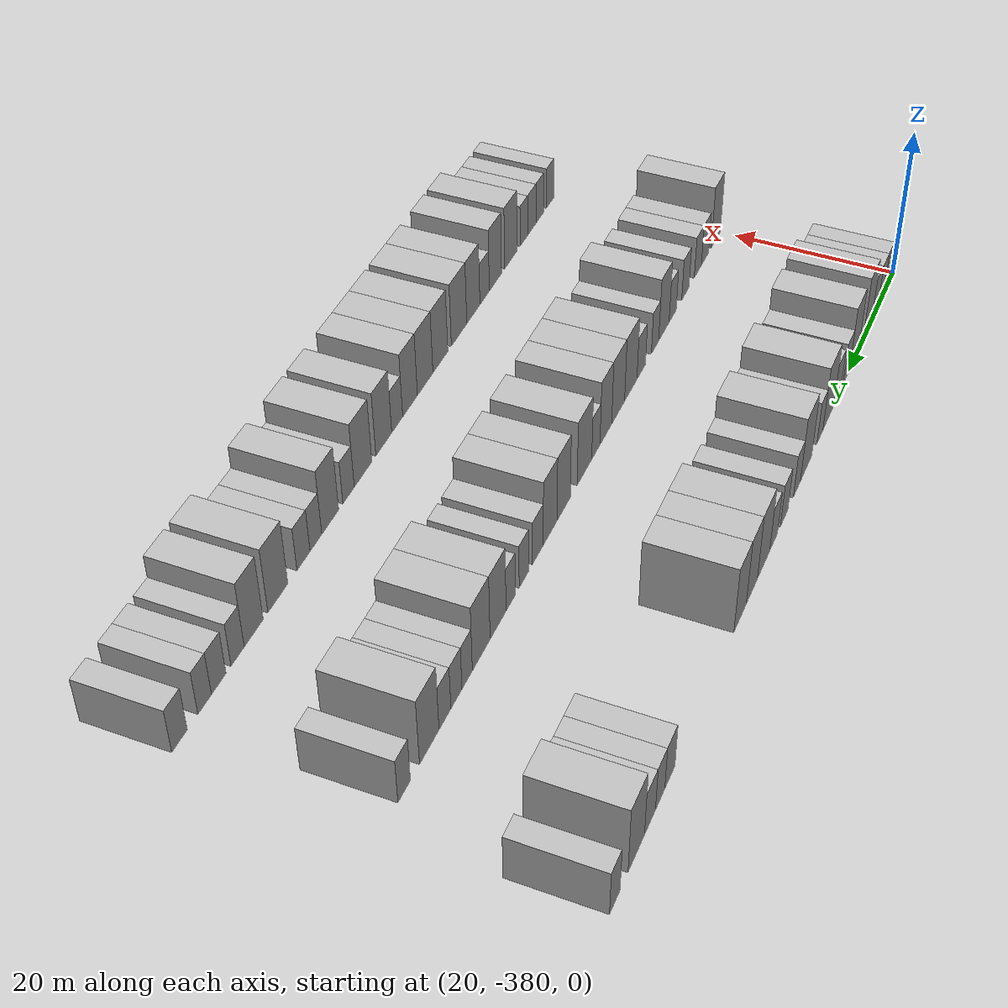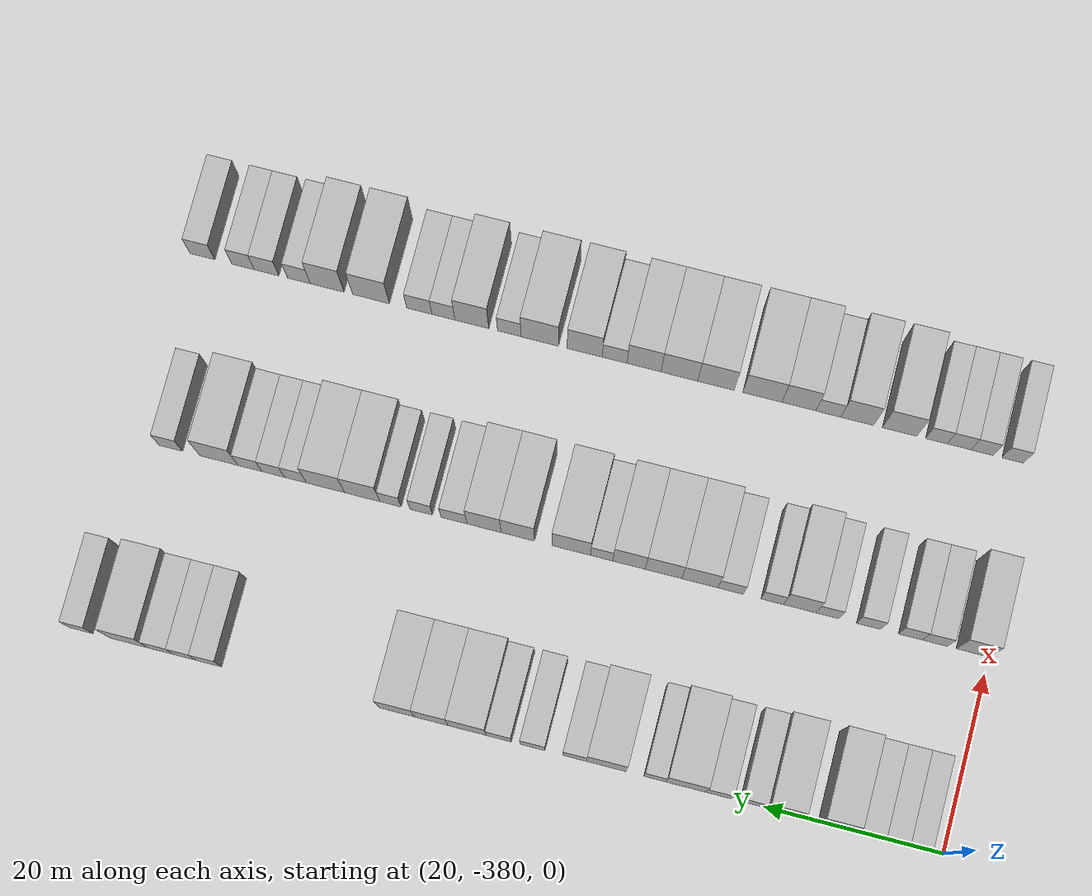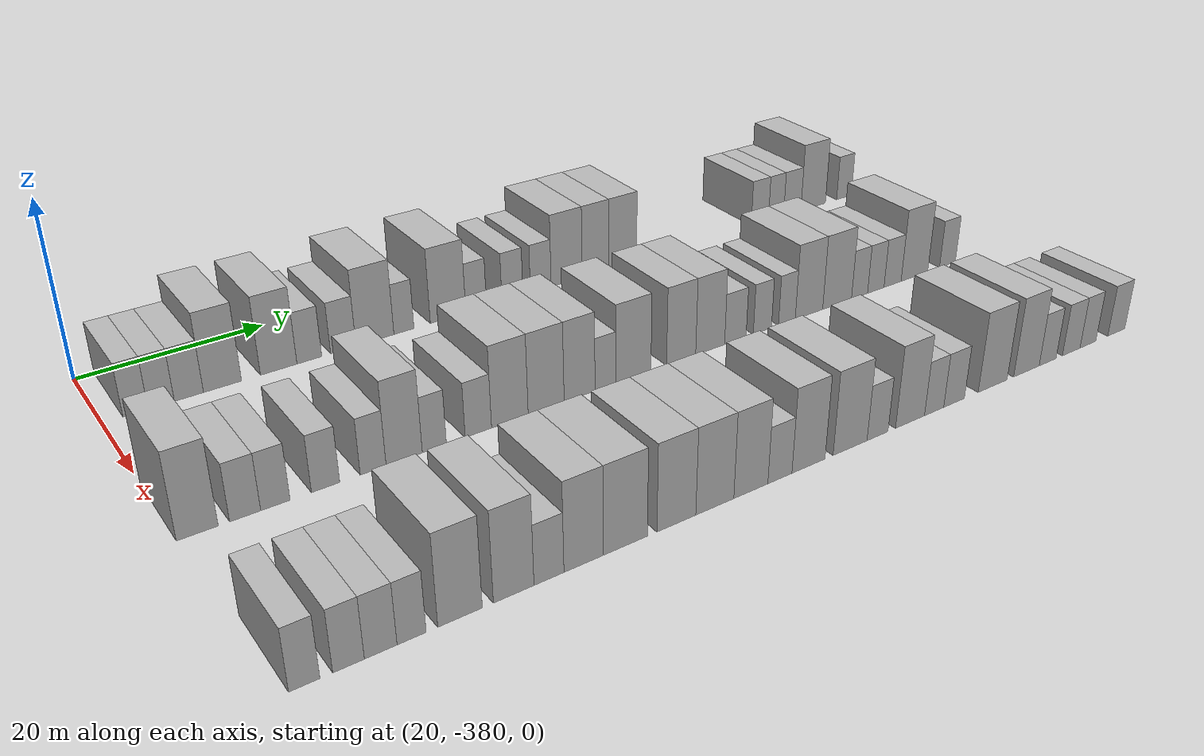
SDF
<sdf version="1.6">
 <world name="default">
  <model name="building_1">
   <static>1</static>
   <pose>25.0000 -376.7795 0 0.000000 0.000000 0.000000</pose>
   <link name="link">
    <pose>0 0 3.00 0 0 0</pose>
    <collision name="collision"><geometry><box><size>10.0000 2.4410 6.0000</size></box></geometry></collision>
    <visual name="visual">
     <cast_shadows>0</cast_shadows>
     <geometry><box><size>10.0000 2.4410 6.0000</size></box></geometry>
     <material>
      <script>
       <uri>model://HANNAS_wall/materials/scripts</uri>
       <uri>model://HANNAS_wall/materials/textures</uri>
       <name>vrc/HANNAS_wall</name>
      </script>
     </material>
    </visual>
   </link>
  </model>
  <model name="building_2">
   <static>1</static>
   <pose>25.0000 -374.2593 0 0.000000 0.000000 0.000000</pose>
   <link name="link">
    <pose>0 0 3.00 0 0 0</pose>
    <collision name="collision"><geometry><box><size>10.0000 2.5993 6.0000</size></box></geometry></collision>
    <visual name="visual">
     <cast_shadows>0</cast_shadows>
     <geometry><box><size>10.0000 2.5993 6.0000</size></box></geometry>
     <material>
      <script>
       <uri>model://HANNAS_wall/materials/scripts</uri>
       <uri>model://HANNAS_wall/materials/textures</uri>
       <name>vrc/HANNAS_wall</name>
      </script>
     </material>
    </visual>
   </link>
  </model>
  <model name="building_3">
   <static>1</static>
   <pose>25.0000 -371.4876 0 0.000000 0.000000 0.000000</pose>
   <link name="link">
    <pose>0 0 3.00 0 0 0</pose>
    <collision name="collision"><geometry><box><size>10.0000 2.9440 6.0000</size></box></geometry></collision>
    <visual name="visual">
     <cast_shadows>0</cast_shadows>
     <geometry><box><size>10.0000 2.9440 6.0000</size></box></geometry>
     <material>
      <script>
       <uri>model://HANNAS_wall/materials/scripts</uri>
       <uri>model://HANNAS_wall/materials/textures</uri>
       <name>vrc/HANNAS_wall</name>
      </script>
     </material>
    </visual>
   </link>
  </model>
  <model name="building_4">
   <static>1</static>
   <pose>25.0000 -368.0420 0 0.000000 0.000000 0.000000</pose>
   <link name="link">
    <pose>0 0 4.50 0 0 0</pose>
    <collision name="collision"><geometry><box><size>10.0000 3.9472 9.0000</size></box></geometry></collision>
    <visual name="visual">
     <cast_shadows>0</cast_shadows>
     <geometry><box><size>10.0000 3.9472 9.0000</size></box></geometry>
     <material>
      <script>
       <uri>model://HANNAS_wall/materials/scripts</uri>
       <uri>model://HANNAS_wall/materials/textures</uri>
       <name>vrc/HANNAS_wall</name>
      </script>
     </material>
    </visual>
   </link>
  </model>
  <model name="building_5">
   <static>1</static>
   <pose>25.0000 -362.0885 0 0.000000 0.000000 0.000000</pose>
   <link name="link">
    <pose>0 0 4.50 0 0 0</pose>
    <collision name="collision"><geometry><box><size>10.0000 3.9597 9.0000</size></box></geometry></collision>
    <visual name="visual">
     <cast_shadows>0</cast_shadows>
     <geometry><box><size>10.0000 3.9597 9.0000</size></box></geometry>
     <material>
      <script>
       <uri>model://HANNAS_wall/materials/scripts</uri>
       <uri>model://HANNAS_wall/materials/textures</uri>
       <name>vrc/HANNAS_wall</name>
      </script>
     </material>
    </visual>
   </link>
  </model>
  <model name="building_6">
   <static>1</static>
   <pose>25.0000 -358.7314 0 0.000000 0.000000 0.000000</pose>
   <link name="link">
    <pose>0 0 3.00 0 0 0</pose>
    <collision name="collision"><geometry><box><size>10.0000 2.7545 6.0000</size></box></geometry></collision>
    <visual name="visual">
     <cast_shadows>0</cast_shadows>
     <geometry><box><size>10.0000 2.7545 6.0000</size></box></geometry>
     <material>
      <script>
       <uri>model://HANNAS_wall/materials/scripts</uri>
       <uri>model://HANNAS_wall/materials/textures</uri>
       <name>vrc/HANNAS_wall</name>
      </script>
     </material>
    </visual>
   </link>
  </model>
  <model name="building_7">
   <static>1</static>
   <pose>25.0000 -354.9093 0 0.000000 0.000000 0.000000</pose>
   <link name="link">
    <pose>0 0 3.00 0 0 0</pose>
    <collision name="collision"><geometry><box><size>10.0000 2.8897 6.0000</size></box></geometry></collision>
    <visual name="visual">
     <cast_shadows>0</cast_shadows>
     <geometry><box><size>10.0000 2.8897 6.0000</size></box></geometry>
     <material>
      <script>
       <uri>model://HANNAS_wall/materials/scripts</uri>
       <uri>model://HANNAS_wall/materials/textures</uri>
       <name>vrc/HANNAS_wall</name>
      </script>
     </material>
    </visual>
   </link>
  </model>
  <model name="building_8">
   <static>1</static>
   <pose>25.0000 -351.2400 0 0.000000 0.000000 0.000000</pose>
   <link name="link">
    <pose>0 0 4.50 0 0 0</pose>
    <collision name="collision"><geometry><box><size>10.0000 4.4490 9.0000</size></box></geometry></collision>
    <visual name="visual">
     <cast_shadows>0</cast_shadows>
     <geometry><box><size>10.0000 4.4490 9.0000</size></box></geometry>
     <material>
      <script>
       <uri>model://HANNAS_wall/materials/scripts</uri>
       <uri>model://HANNAS_wall/materials/textures</uri>
       <name>vrc/HANNAS_wall</name>
      </script>
     </material>
    </visual>
   </link>
  </model>
  <model name="building_9">
   <static>1</static>
   <pose>25.0000 -347.8144 0 0.000000 0.000000 0.000000</pose>
   <link name="link">
    <pose>0 0 3.00 0 0 0</pose>
    <collision name="collision"><geometry><box><size>10.0000 2.4022 6.0000</size></box></geometry></collision>
    <visual name="visual">
     <cast_shadows>0</cast_shadows>
     <geometry><box><size>10.0000 2.4022 6.0000</size></box></geometry>
     <material>
      <script>
       <uri>model://HANNAS_wall/materials/scripts</uri>
       <uri>model://HANNAS_wall/materials/textures</uri>
       <name>vrc/HANNAS_wall</name>
      </script>
     </material>
    </visual>
   </link>
  </model>
  <model name="building_10">
   <static>1</static>
   <pose>25.0000 -342.4051 0 0.000000 0.000000 0.000000</pose>
   <link name="link">
    <pose>0 0 4.50 0 0 0</pose>
    <collision name="collision"><geometry><box><size>10.0000 4.4166 9.0000</size></box></geometry></collision>
    <visual name="visual">
     <cast_shadows>0</cast_shadows>
     <geometry><box><size>10.0000 4.4166 9.0000</size></box></geometry>
     <material>
      <script>
       <uri>model://HANNAS_wall/materials/scripts</uri>
       <uri>model://HANNAS_wall/materials/textures</uri>
       <name>vrc/HANNAS_wall</name>
      </script>
     </material>
    </visual>
   </link>
  </model>
  <model name="building_11">
   <static>1</static>
   <pose>25.0000 -338.8746 0 0.000000 0.000000 0.000000</pose>
   <link name="link">
    <pose>0 0 3.00 0 0 0</pose>
    <collision name="collision"><geometry><box><size>10.0000 2.6444 6.0000</size></box></geometry></collision>
    <visual name="visual">
     <cast_shadows>0</cast_shadows>
     <geometry><box><size>10.0000 2.6444 6.0000</size></box></geometry>
     <material>
      <script>
       <uri>model://HANNAS_wall/materials/scripts</uri>
       <uri>model://HANNAS_wall/materials/textures</uri>
       <name>vrc/HANNAS_wall</name>
      </script>
     </material>
    </visual>
   </link>
  </model>
  <model name="building_12">
   <static>1</static>
   <pose>25.0000 -334.1689 0 0.000000 0.000000 0.000000</pose>
   <link name="link">
    <pose>0 0 3.00 0 0 0</pose>
    <collision name="collision"><geometry><box><size>10.0000 2.7669 6.0000</size></box></geometry></collision>
    <visual name="visual">
     <cast_shadows>0</cast_shadows>
     <geometry><box><size>10.0000 2.7669 6.0000</size></box></geometry>
     <material>
      <script>
       <uri>model://HANNAS_wall/materials/scripts</uri>
       <uri>model://HANNAS_wall/materials/textures</uri>
       <name>vrc/HANNAS_wall</name>
      </script>
     </material>
    </visual>
   </link>
  </model>
  <model name="building_13">
   <static>1</static>
   <pose>25.0000 -330.3850 0 0.000000 0.000000 0.000000</pose>
   <link name="link">
    <pose>0 0 3.00 0 0 0</pose>
    <collision name="collision"><geometry><box><size>10.0000 2.8009 6.0000</size></box></geometry></collision>
    <visual name="visual">
     <cast_shadows>0</cast_shadows>
     <geometry><box><size>10.0000 2.8009 6.0000</size></box></geometry>
     <material>
      <script>
       <uri>model://HANNAS_wall/materials/scripts</uri>
       <uri>model://HANNAS_wall/materials/textures</uri>
       <name>vrc/HANNAS_wall</name>
      </script>
     </material>
    </visual>
   </link>
  </model>
  <model name="building_14">
   <static>1</static>
   <pose>25.0000 -326.8384 0 0.000000 0.000000 0.000000</pose>
   <link name="link">
    <pose>0 0 4.50 0 0 0</pose>
    <collision name="collision"><geometry><box><size>10.0000 4.2923 9.0000</size></box></geometry></collision>
    <visual name="visual">
     <cast_shadows>0</cast_shadows>
     <geometry><box><size>10.0000 4.2923 9.0000</size></box></geometry>
     <material>
      <script>
       <uri>model://HANNAS_wall/materials/scripts</uri>
       <uri>model://HANNAS_wall/materials/textures</uri>
       <name>vrc/HANNAS_wall</name>
      </script>
     </material>
    </visual>
   </link>
  </model>
  <model name="building_15">
   <static>1</static>
   <pose>25.0000 -322.8135 0 0.000000 0.000000 0.000000</pose>
   <link name="link">
    <pose>0 0 4.50 0 0 0</pose>
    <collision name="collision"><geometry><box><size>10.0000 3.7576 9.0000</size></box></geometry></collision>
    <visual name="visual">
     <cast_shadows>0</cast_shadows>
     <geometry><box><size>10.0000 3.7576 9.0000</size></box></geometry>
     <material>
      <script>
       <uri>model://HANNAS_wall/materials/scripts</uri>
       <uri>model://HANNAS_wall/materials/textures</uri>
       <name>vrc/HANNAS_wall</name>
      </script>
     </material>
    </visual>
   </link>
  </model>
  <model name="building_16">
   <static>1</static>
   <pose>25.0000 -318.9065 0 0.000000 0.000000 0.000000</pose>
   <link name="link">
    <pose>0 0 4.50 0 0 0</pose>
    <collision name="collision"><geometry><box><size>10.0000 4.0564 9.0000</size></box></geometry></collision>
    <visual name="visual">
     <cast_shadows>0</cast_shadows>
     <geometry><box><size>10.0000 4.0564 9.0000</size></box></geometry>
     <material>
      <script>
       <uri>model://HANNAS_wall/materials/scripts</uri>
       <uri>model://HANNAS_wall/materials/textures</uri>
       <name>vrc/HANNAS_wall</name>
      </script>
     </material>
    </visual>
   </link>
  </model>
  <model name="building_17">
   <static>1</static>
   <pose>25.0000 -297.6133 0 0.000000 0.000000 0.000000</pose>
   <link name="link">
    <pose>0 0 3.00 0 0 0</pose>
    <collision name="collision"><geometry><box><size>10.0000 2.8433 6.0000</size></box></geometry></collision>
    <visual name="visual">
     <cast_shadows>0</cast_shadows>
     <geometry><box><size>10.0000 2.8433 6.0000</size></box></geometry>
     <material>
      <script>
       <uri>model://HANNAS_wall/materials/scripts</uri>
       <uri>model://HANNAS_wall/materials/textures</uri>
       <name>vrc/HANNAS_wall</name>
      </script>
     </material>
    </visual>
   </link>
  </model>
  <model name="building_18">
   <static>1</static>
   <pose>25.0000 -294.9142 0 0.000000 0.000000 0.000000</pose>
   <link name="link">
    <pose>0 0 3.00 0 0 0</pose>
    <collision name="collision"><geometry><box><size>10.0000 2.5547 6.0000</size></box></geometry></collision>
    <visual name="visual">
     <cast_shadows>0</cast_shadows>
     <geometry><box><size>10.0000 2.5547 6.0000</size></box></geometry>
     <material>
      <script>
       <uri>model://HANNAS_wall/materials/scripts</uri>
       <uri>model://HANNAS_wall/materials/textures</uri>
       <name>vrc/HANNAS_wall</name>
      </script>
     </material>
    </visual>
   </link>
  </model>
  <model name="building_19">
   <static>1</static>
   <pose>25.0000 -292.1656 0 0.000000 0.000000 0.000000</pose>
   <link name="link">
    <pose>0 0 3.00 0 0 0</pose>
    <collision name="collision"><geometry><box><size>10.0000 2.9425 6.0000</size></box></geometry></collision>
    <visual name="visual">
     <cast_shadows>0</cast_shadows>
     <geometry><box><size>10.0000 2.9425 6.0000</size></box></geometry>
     <material>
      <script>
       <uri>model://HANNAS_wall/materials/scripts</uri>
       <uri>model://HANNAS_wall/materials/textures</uri>
       <name>vrc/HANNAS_wall</name>
      </script>
     </material>
    </visual>
   </link>
  </model>
  <model name="building_20">
   <static>1</static>
   <pose>25.0000 -288.5497 0 0.000000 0.000000 0.000000</pose>
   <link name="link">
    <pose>0 0 4.50 0 0 0</pose>
    <collision name="collision"><geometry><box><size>10.0000 4.2895 9.0000</size></box></geometry></collision>
    <visual name="visual">
     <cast_shadows>0</cast_shadows>
     <geometry><box><size>10.0000 4.2895 9.0000</size></box></geometry>
     <material>
      <script>
       <uri>model://HANNAS_wall/materials/scripts</uri>
       <uri>model://HANNAS_wall/materials/textures</uri>
       <name>vrc/HANNAS_wall</name>
      </script>
     </material>
    </visual>
   </link>
  </model>
  <model name="building_21">
   <static>1</static>
   <pose>25.0000 -283.0830 0 0.000000 0.000000 0.000000</pose>
   <link name="link">
    <pose>0 0 3.00 0 0 0</pose>
    <collision name="collision"><geometry><box><size>10.0000 2.6439 6.0000</size></box></geometry></collision>
    <visual name="visual">
     <cast_shadows>0</cast_shadows>
     <geometry><box><size>10.0000 2.6439 6.0000</size></box></geometry>
     <material>
      <script>
       <uri>model://HANNAS_wall/materials/scripts</uri>
       <uri>model://HANNAS_wall/materials/textures</uri>
       <name>vrc/HANNAS_wall</name>
      </script>
     </material>
    </visual>
   </link>
  </model>
  <model name="building_184">
   <static>1</static>
   <pose>47.0000 -378.1825 0 0.000000 0.000000 0.000000</pose>
   <link name="link">
    <pose>0 0 4.50 0 0 0</pose>
    <collision name="collision"><geometry><box><size>10.0000 3.6351 9.0000</size></box></geometry></collision>
    <visual name="visual">
     <cast_shadows>0</cast_shadows>
     <geometry><box><size>10.0000 3.6351 9.0000</size></box></geometry>
     <material>
      <script>
       <uri>model://HANNAS_wall/materials/scripts</uri>
       <uri>model://HANNAS_wall/materials/textures</uri>
       <name>vrc/HANNAS_wall</name>
      </script>
     </material>
    </visual>
   </link>
  </model>
  <model name="building_185">
   <static>1</static>
   <pose>47.0000 -373.9674 0 0.000000 0.000000 0.000000</pose>
   <link name="link">
    <pose>0 0 3.00 0 0 0</pose>
    <collision name="collision"><geometry><box><size>10.0000 2.7951 6.0000</size></box></geometry></collision>
    <visual name="visual">
     <cast_shadows>0</cast_shadows>
     <geometry><box><size>10.0000 2.7951 6.0000</size></box></geometry>
     <material>
      <script>
       <uri>model://HANNAS_wall/materials/scripts</uri>
       <uri>model://HANNAS_wall/materials/textures</uri>
       <name>vrc/HANNAS_wall</name>
      </script>
     </material>
    </visual>
   </link>
  </model>
  <model name="building_186">
   <static>1</static>
   <pose>47.0000 -371.2185 0 0.000000 0.000000 0.000000</pose>
   <link name="link">
    <pose>0 0 3.00 0 0 0</pose>
    <collision name="collision"><geometry><box><size>10.0000 2.7026 6.0000</size></box></geometry></collision>
    <visual name="visual">
     <cast_shadows>0</cast_shadows>
     <geometry><box><size>10.0000 2.7026 6.0000</size></box></geometry>
     <material>
      <script>
       <uri>model://HANNAS_wall/materials/scripts</uri>
       <uri>model://HANNAS_wall/materials/textures</uri>
       <name>vrc/HANNAS_wall</name>
      </script>
     </material>
    </visual>
   </link>
  </model>
  <model name="building_187">
   <static>1</static>
   <pose>47.0000 -366.5113 0 0.000000 0.000000 0.000000</pose>
   <link name="link">
    <pose>0 0 3.00 0 0 0</pose>
    <collision name="collision"><geometry><box><size>10.0000 2.7118 6.0000</size></box></geometry></collision>
    <visual name="visual">
     <cast_shadows>0</cast_shadows>
     <geometry><box><size>10.0000 2.7118 6.0000</size></box></geometry>
     <material>
      <script>
       <uri>model://HANNAS_wall/materials/scripts</uri>
       <uri>model://HANNAS_wall/materials/textures</uri>
       <name>vrc/HANNAS_wall</name>
      </script>
     </material>
    </visual>
   </link>
  </model>
  <model name="building_188">
   <static>1</static>
   <pose>47.0000 -361.8683 0 0.000000 0.000000 0.000000</pose>
   <link name="link">
    <pose>0 0 3.00 0 0 0</pose>
    <collision name="collision"><geometry><box><size>10.0000 2.5742 6.0000</size></box></geometry></collision>
    <visual name="visual">
     <cast_shadows>0</cast_shadows>
     <geometry><box><size>10.0000 2.5742 6.0000</size></box></geometry>
     <material>
      <script>
       <uri>model://HANNAS_wall/materials/scripts</uri>
       <uri>model://HANNAS_wall/materials/textures</uri>
       <name>vrc/HANNAS_wall</name>
      </script>
     </material>
    </visual>
   </link>
  </model>
  <model name="building_189">
   <static>1</static>
   <pose>47.0000 -358.7316 0 0.000000 0.000000 0.000000</pose>
   <link name="link">
    <pose>0 0 4.50 0 0 0</pose>
    <collision name="collision"><geometry><box><size>10.0000 3.6991 9.0000</size></box></geometry></collision>
    <visual name="visual">
     <cast_shadows>0</cast_shadows>
     <geometry><box><size>10.0000 3.6991 9.0000</size></box></geometry>
     <material>
      <script>
       <uri>model://HANNAS_wall/materials/scripts</uri>
       <uri>model://HANNAS_wall/materials/textures</uri>
       <name>vrc/HANNAS_wall</name>
      </script>
     </material>
    </visual>
   </link>
  </model>
  <model name="building_190">
   <static>1</static>
   <pose>47.0000 -355.6220 0 0.000000 0.000000 0.000000</pose>
   <link name="link">
    <pose>0 0 3.00 0 0 0</pose>
    <collision name="collision"><geometry><box><size>10.0000 2.5201 6.0000</size></box></geometry></collision>
    <visual name="visual">
     <cast_shadows>0</cast_shadows>
     <geometry><box><size>10.0000 2.5201 6.0000</size></box></geometry>
     <material>
      <script>
       <uri>model://HANNAS_wall/materials/scripts</uri>
       <uri>model://HANNAS_wall/materials/textures</uri>
       <name>vrc/HANNAS_wall</name>
      </script>
     </material>
    </visual>
   </link>
  </model>
  <model name="building_191">
   <static>1</static>
   <pose>47.0000 -350.9259 0 0.000000 0.000000 0.000000</pose>
   <link name="link">
    <pose>0 0 3.00 0 0 0</pose>
    <collision name="collision"><geometry><box><size>10.0000 2.8722 6.0000</size></box></geometry></collision>
    <visual name="visual">
     <cast_shadows>0</cast_shadows>
     <geometry><box><size>10.0000 2.8722 6.0000</size></box></geometry>
     <material>
      <script>
       <uri>model://HANNAS_wall/materials/scripts</uri>
       <uri>model://HANNAS_wall/materials/textures</uri>
       <name>vrc/HANNAS_wall</name>
      </script>
     </material>
    </visual>
   </link>
  </model>
  <model name="building_192">
   <static>1</static>
   <pose>47.0000 -347.4424 0 0.000000 0.000000 0.000000</pose>
   <link name="link">
    <pose>0 0 4.50 0 0 0</pose>
    <collision name="collision"><geometry><box><size>10.0000 4.0946 9.0000</size></box></geometry></collision>
    <visual name="visual">
     <cast_shadows>0</cast_shadows>
     <geometry><box><size>10.0000 4.0946 9.0000</size></box></geometry>
     <material>
      <script>
       <uri>model://HANNAS_wall/materials/scripts</uri>
       <uri>model://HANNAS_wall/materials/textures</uri>
       <name>vrc/HANNAS_wall</name>
      </script>
     </material>
    </visual>
   </link>
  </model>
  <model name="building_193">
   <static>1</static>
   <pose>47.0000 -343.3202 0 0.000000 0.000000 0.000000</pose>
   <link name="link">
    <pose>0 0 4.50 0 0 0</pose>
    <collision name="collision"><geometry><box><size>10.0000 4.1497 9.0000</size></box></geometry></collision>
    <visual name="visual">
     <cast_shadows>0</cast_shadows>
     <geometry><box><size>10.0000 4.1497 9.0000</size></box></geometry>
     <material>
      <script>
       <uri>model://HANNAS_wall/materials/scripts</uri>
       <uri>model://HANNAS_wall/materials/textures</uri>
       <name>vrc/HANNAS_wall</name>
      </script>
     </material>
    </visual>
   </link>
  </model>
  <model name="building_194">
   <static>1</static>
   <pose>47.0000 -339.4068 0 0.000000 0.000000 0.000000</pose>
   <link name="link">
    <pose>0 0 4.50 0 0 0</pose>
    <collision name="collision"><geometry><box><size>10.0000 3.6771 9.0000</size></box></geometry></collision>
    <visual name="visual">
     <cast_shadows>0</cast_shadows>
     <geometry><box><size>10.0000 3.6771 9.0000</size></box></geometry>
     <material>
      <script>
       <uri>model://HANNAS_wall/materials/scripts</uri>
       <uri>model://HANNAS_wall/materials/textures</uri>
       <name>vrc/HANNAS_wall</name>
      </script>
     </material>
    </visual>
   </link>
  </model>
  <model name="building_195">
   <static>1</static>
   <pose>47.0000 -336.3065 0 0.000000 0.000000 0.000000</pose>
   <link name="link">
    <pose>0 0 3.00 0 0 0</pose>
    <collision name="collision"><geometry><box><size>10.0000 2.5234 6.0000</size></box></geometry></collision>
    <visual name="visual">
     <cast_shadows>0</cast_shadows>
     <geometry><box><size>10.0000 2.5234 6.0000</size></box></geometry>
     <material>
      <script>
       <uri>model://HANNAS_wall/materials/scripts</uri>
       <uri>model://HANNAS_wall/materials/textures</uri>
       <name>vrc/HANNAS_wall</name>
      </script>
     </material>
    </visual>
   </link>
  </model>
  <model name="building_196">
   <static>1</static>
   <pose>47.0000 -332.8541 0 0.000000 0.000000 0.000000</pose>
   <link name="link">
    <pose>0 0 4.50 0 0 0</pose>
    <collision name="collision"><geometry><box><size>10.0000 4.3814 9.0000</size></box></geometry></collision>
    <visual name="visual">
     <cast_shadows>0</cast_shadows>
     <geometry><box><size>10.0000 4.3814 9.0000</size></box></geometry>
     <material>
      <script>
       <uri>model://HANNAS_wall/materials/scripts</uri>
       <uri>model://HANNAS_wall/materials/textures</uri>
       <name>vrc/HANNAS_wall</name>
      </script>
     </material>
    </visual>
   </link>
  </model>
  <model name="building_197">
   <static>1</static>
   <pose>47.0000 -326.7607 0 0.000000 0.000000 0.000000</pose>
   <link name="link">
    <pose>0 0 4.50 0 0 0</pose>
    <collision name="collision"><geometry><box><size>10.0000 3.8055 9.0000</size></box></geometry></collision>
    <visual name="visual">
     <cast_shadows>0</cast_shadows>
     <geometry><box><size>10.0000 3.8055 9.0000</size></box></geometry>
     <material>
      <script>
       <uri>model://HANNAS_wall/materials/scripts</uri>
       <uri>model://HANNAS_wall/materials/textures</uri>
       <name>vrc/HANNAS_wall</name>
      </script>
     </material>
    </visual>
   </link>
  </model>
  <model name="building_198">
   <static>1</static>
   <pose>47.0000 -322.9140 0 0.000000 0.000000 0.000000</pose>
   <link name="link">
    <pose>0 0 4.50 0 0 0</pose>
    <collision name="collision"><geometry><box><size>10.0000 3.8879 9.0000</size></box></geometry></collision>
    <visual name="visual">
     <cast_shadows>0</cast_shadows>
     <geometry><box><size>10.0000 3.8879 9.0000</size></box></geometry>
     <material>
      <script>
       <uri>model://HANNAS_wall/materials/scripts</uri>
       <uri>model://HANNAS_wall/materials/textures</uri>
       <name>vrc/HANNAS_wall</name>
      </script>
     </material>
    </visual>
   </link>
  </model>
  <model name="building_199">
   <static>1</static>
   <pose>47.0000 -319.4909 0 0.000000 0.000000 0.000000</pose>
   <link name="link">
    <pose>0 0 3.00 0 0 0</pose>
    <collision name="collision"><geometry><box><size>10.0000 2.9583 6.0000</size></box></geometry></collision>
    <visual name="visual">
     <cast_shadows>0</cast_shadows>
     <geometry><box><size>10.0000 2.9583 6.0000</size></box></geometry>
     <material>
      <script>
       <uri>model://HANNAS_wall/materials/scripts</uri>
       <uri>model://HANNAS_wall/materials/textures</uri>
       <name>vrc/HANNAS_wall</name>
      </script>
     </material>
    </visual>
   </link>
  </model>
  <model name="building_200">
   <static>1</static>
   <pose>47.0000 -315.7278 0 0.000000 0.000000 0.000000</pose>
   <link name="link">
    <pose>0 0 3.00 0 0 0</pose>
    <collision name="collision"><geometry><box><size>10.0000 2.5679 6.0000</size></box></geometry></collision>
    <visual name="visual">
     <cast_shadows>0</cast_shadows>
     <geometry><box><size>10.0000 2.5679 6.0000</size></box></geometry>
     <material>
      <script>
       <uri>model://HANNAS_wall/materials/scripts</uri>
       <uri>model://HANNAS_wall/materials/textures</uri>
       <name>vrc/HANNAS_wall</name>
      </script>
     </material>
    </visual>
   </link>
  </model>
  <model name="building_201">
   <static>1</static>
   <pose>47.0000 -312.2288 0 0.000000 0.000000 0.000000</pose>
   <link name="link">
    <pose>0 0 3.00 0 0 0</pose>
    <collision name="collision"><geometry><box><size>10.0000 2.4302 6.0000</size></box></geometry></collision>
    <visual name="visual">
     <cast_shadows>0</cast_shadows>
     <geometry><box><size>10.0000 2.4302 6.0000</size></box></geometry>
     <material>
      <script>
       <uri>model://HANNAS_wall/materials/scripts</uri>
       <uri>model://HANNAS_wall/materials/textures</uri>
       <name>vrc/HANNAS_wall</name>
      </script>
     </material>
    </visual>
   </link>
  </model>
  <model name="building_202">
   <static>1</static>
   <pose>47.0000 -308.9847 0 0.000000 0.000000 0.000000</pose>
   <link name="link">
    <pose>0 0 4.50 0 0 0</pose>
    <collision name="collision"><geometry><box><size>10.0000 4.0579 9.0000</size></box></geometry></collision>
    <visual name="visual">
     <cast_shadows>0</cast_shadows>
     <geometry><box><size>10.0000 4.0579 9.0000</size></box></geometry>
     <material>
      <script>
       <uri>model://HANNAS_wall/materials/scripts</uri>
       <uri>model://HANNAS_wall/materials/textures</uri>
       <name>vrc/HANNAS_wall</name>
      </script>
     </material>
    </visual>
   </link>
  </model>
  <model name="building_203">
   <static>1</static>
   <pose>47.0000 -304.7627 0 0.000000 0.000000 0.000000</pose>
   <link name="link">
    <pose>0 0 4.50 0 0 0</pose>
    <collision name="collision"><geometry><box><size>10.0000 4.3862 9.0000</size></box></geometry></collision>
    <visual name="visual">
     <cast_shadows>0</cast_shadows>
     <geometry><box><size>10.0000 4.3862 9.0000</size></box></geometry>
     <material>
      <script>
       <uri>model://HANNAS_wall/materials/scripts</uri>
       <uri>model://HANNAS_wall/materials/textures</uri>
       <name>vrc/HANNAS_wall</name>
      </script>
     </material>
    </visual>
   </link>
  </model>
  <model name="building_204">
   <static>1</static>
   <pose>47.0000 -301.3172 0 0.000000 0.000000 0.000000</pose>
   <link name="link">
    <pose>0 0 3.00 0 0 0</pose>
    <collision name="collision"><geometry><box><size>10.0000 2.5046 6.0000</size></box></geometry></collision>
    <visual name="visual">
     <cast_shadows>0</cast_shadows>
     <geometry><box><size>10.0000 2.5046 6.0000</size></box></geometry>
     <material>
      <script>
       <uri>model://HANNAS_wall/materials/scripts</uri>
       <uri>model://HANNAS_wall/materials/textures</uri>
       <name>vrc/HANNAS_wall</name>
      </script>
     </material>
    </visual>
   </link>
  </model>
  <model name="building_205">
   <static>1</static>
   <pose>47.0000 -298.7607 0 0.000000 0.000000 0.000000</pose>
   <link name="link">
    <pose>0 0 3.00 0 0 0</pose>
    <collision name="collision"><geometry><box><size>10.0000 2.6084 6.0000</size></box></geometry></collision>
    <visual name="visual">
     <cast_shadows>0</cast_shadows>
     <geometry><box><size>10.0000 2.6084 6.0000</size></box></geometry>
     <material>
      <script>
       <uri>model://HANNAS_wall/materials/scripts</uri>
       <uri>model://HANNAS_wall/materials/textures</uri>
       <name>vrc/HANNAS_wall</name>
      </script>
     </material>
    </visual>
   </link>
  </model>
  <model name="building_206">
   <static>1</static>
   <pose>47.0000 -296.0762 0 0.000000 0.000000 0.000000</pose>
   <link name="link">
    <pose>0 0 3.00 0 0 0</pose>
    <collision name="collision"><geometry><box><size>10.0000 2.7606 6.0000</size></box></geometry></collision>
    <visual name="visual">
     <cast_shadows>0</cast_shadows>
     <geometry><box><size>10.0000 2.7606 6.0000</size></box></geometry>
     <material>
      <script>
       <uri>model://HANNAS_wall/materials/scripts</uri>
       <uri>model://HANNAS_wall/materials/textures</uri>
       <name>vrc/HANNAS_wall</name>
      </script>
     </material>
    </visual>
   </link>
  </model>
  <model name="building_207">
   <static>1</static>
   <pose>47.0000 -292.5025 0 0.000000 0.000000 0.000000</pose>
   <link name="link">
    <pose>0 0 4.50 0 0 0</pose>
    <collision name="collision"><geometry><box><size>10.0000 4.3869 9.0000</size></box></geometry></collision>
    <visual name="visual">
     <cast_shadows>0</cast_shadows>
     <geometry><box><size>10.0000 4.3869 9.0000</size></box></geometry>
     <material>
      <script>
       <uri>model://HANNAS_wall/materials/scripts</uri>
       <uri>model://HANNAS_wall/materials/textures</uri>
       <name>vrc/HANNAS_wall</name>
      </script>
     </material>
    </visual>
   </link>
  </model>
  <model name="building_208">
   <static>1</static>
   <pose>47.0000 -286.9596 0 0.000000 0.000000 0.000000</pose>
   <link name="link">
    <pose>0 0 3.00 0 0 0</pose>
    <collision name="collision"><geometry><box><size>10.0000 2.6987 6.0000</size></box></geometry></collision>
    <visual name="visual">
     <cast_shadows>0</cast_shadows>
     <geometry><box><size>10.0000 2.6987 6.0000</size></box></geometry>
     <material>
      <script>
       <uri>model://HANNAS_wall/materials/scripts</uri>
       <uri>model://HANNAS_wall/materials/textures</uri>
       <name>vrc/HANNAS_wall</name>
      </script>
     </material>
    </visual>
   </link>
  </model>
  <model name="building_373">
   <static>1</static>
   <pose>69.0000 -377.7778 0 0.000000 0.000000 0.000000</pose>
   <link name="link">
    <pose>0 0 3.00 0 0 0</pose>
    <collision name="collision"><geometry><box><size>10.0000 2.4444 6.0000</size></box></geometry></collision>
    <visual name="visual">
     <cast_shadows>0</cast_shadows>
     <geometry><box><size>10.0000 2.4444 6.0000</size></box></geometry>
     <material>
      <script>
       <uri>model://HANNAS_wall/materials/scripts</uri>
       <uri>model://HANNAS_wall/materials/textures</uri>
       <name>vrc/HANNAS_wall</name>
      </script>
     </material>
    </visual>
   </link>
  </model>
  <model name="building_374">
   <static>1</static>
   <pose>69.0000 -374.2818 0 0.000000 0.000000 0.000000</pose>
   <link name="link">
    <pose>0 0 3.00 0 0 0</pose>
    <collision name="collision"><geometry><box><size>10.0000 2.5477 6.0000</size></box></geometry></collision>
    <visual name="visual">
     <cast_shadows>0</cast_shadows>
     <geometry><box><size>10.0000 2.5477 6.0000</size></box></geometry>
     <material>
      <script>
       <uri>model://HANNAS_wall/materials/scripts</uri>
       <uri>model://HANNAS_wall/materials/textures</uri>
       <name>vrc/HANNAS_wall</name>
      </script>
     </material>
    </visual>
   </link>
  </model>
  <model name="building_375">
   <static>1</static>
   <pose>69.0000 -371.6582 0 0.000000 0.000000 0.000000</pose>
   <link name="link">
    <pose>0 0 3.00 0 0 0</pose>
    <collision name="collision"><geometry><box><size>10.0000 2.6995 6.0000</size></box></geometry></collision>
    <visual name="visual">
     <cast_shadows>0</cast_shadows>
     <geometry><box><size>10.0000 2.6995 6.0000</size></box></geometry>
     <material>
      <script>
       <uri>model://HANNAS_wall/materials/scripts</uri>
       <uri>model://HANNAS_wall/materials/textures</uri>
       <name>vrc/HANNAS_wall</name>
      </script>
     </material>
    </visual>
   </link>
  </model>
  <model name="building_376">
   <static>1</static>
   <pose>69.0000 -369.0780 0 0.000000 0.000000 0.000000</pose>
   <link name="link">
    <pose>0 0 3.00 0 0 0</pose>
    <collision name="collision"><geometry><box><size>10.0000 2.4609 6.0000</size></box></geometry></collision>
    <visual name="visual">
     <cast_shadows>0</cast_shadows>
     <geometry><box><size>10.0000 2.4609 6.0000</size></box></geometry>
     <material>
      <script>
       <uri>model://HANNAS_wall/materials/scripts</uri>
       <uri>model://HANNAS_wall/materials/textures</uri>
       <name>vrc/HANNAS_wall</name>
      </script>
     </material>
    </visual>
   </link>
  </model>
  <model name="building_377">
   <static>1</static>
   <pose>69.0000 -364.8821 0 0.000000 0.000000 0.000000</pose>
   <link name="link">
    <pose>0 0 4.50 0 0 0</pose>
    <collision name="collision"><geometry><box><size>10.0000 3.9308 9.0000</size></box></geometry></collision>
    <visual name="visual">
     <cast_shadows>0</cast_shadows>
     <geometry><box><size>10.0000 3.9308 9.0000</size></box></geometry>
     <material>
      <script>
       <uri>model://HANNAS_wall/materials/scripts</uri>
       <uri>model://HANNAS_wall/materials/textures</uri>
       <name>vrc/HANNAS_wall</name>
      </script>
     </material>
    </visual>
   </link>
  </model>
  <model name="building_378">
   <static>1</static>
   <pose>69.0000 -360.0393 0 0.000000 0.000000 0.000000</pose>
   <link name="link">
    <pose>0 0 4.50 0 0 0</pose>
    <collision name="collision"><geometry><box><size>10.0000 3.7548 9.0000</size></box></geometry></collision>
    <visual name="visual">
     <cast_shadows>0</cast_shadows>
     <geometry><box><size>10.0000 3.7548 9.0000</size></box></geometry>
     <material>
      <script>
       <uri>model://HANNAS_wall/materials/scripts</uri>
       <uri>model://HANNAS_wall/materials/textures</uri>
       <name>vrc/HANNAS_wall</name>
      </script>
     </material>
    </visual>
   </link>
  </model>
  <model name="building_379">
   <static>1</static>
   <pose>69.0000 -356.7332 0 0.000000 0.000000 0.000000</pose>
   <link name="link">
    <pose>0 0 3.00 0 0 0</pose>
    <collision name="collision"><geometry><box><size>10.0000 2.8575 6.0000</size></box></geometry></collision>
    <visual name="visual">
     <cast_shadows>0</cast_shadows>
     <geometry><box><size>10.0000 2.8575 6.0000</size></box></geometry>
     <material>
      <script>
       <uri>model://HANNAS_wall/materials/scripts</uri>
       <uri>model://HANNAS_wall/materials/textures</uri>
       <name>vrc/HANNAS_wall</name>
      </script>
     </material>
    </visual>
   </link>
  </model>
  <model name="building_380">
   <static>1</static>
   <pose>69.0000 -353.3582 0 0.000000 0.000000 0.000000</pose>
   <link name="link">
    <pose>0 0 4.50 0 0 0</pose>
    <collision name="collision"><geometry><box><size>10.0000 3.8924 9.0000</size></box></geometry></collision>
    <visual name="visual">
     <cast_shadows>0</cast_shadows>
     <geometry><box><size>10.0000 3.8924 9.0000</size></box></geometry>
     <material>
      <script>
       <uri>model://HANNAS_wall/materials/scripts</uri>
       <uri>model://HANNAS_wall/materials/textures</uri>
       <name>vrc/HANNAS_wall</name>
      </script>
     </material>
    </visual>
   </link>
  </model>
  <model name="building_381">
   <static>1</static>
   <pose>69.0000 -349.1725 0 0.000000 0.000000 0.000000</pose>
   <link name="link">
    <pose>0 0 4.50 0 0 0</pose>
    <collision name="collision"><geometry><box><size>10.0000 4.4791 9.0000</size></box></geometry></collision>
    <visual name="visual">
     <cast_shadows>0</cast_shadows>
     <geometry><box><size>10.0000 4.4791 9.0000</size></box></geometry>
     <material>
      <script>
       <uri>model://HANNAS_wall/materials/scripts</uri>
       <uri>model://HANNAS_wall/materials/textures</uri>
       <name>vrc/HANNAS_wall</name>
      </script>
     </material>
    </visual>
   </link>
  </model>
  <model name="building_382">
   <static>1</static>
   <pose>69.0000 -343.8500 0 0.000000 0.000000 0.000000</pose>
   <link name="link">
    <pose>0 0 4.50 0 0 0</pose>
    <collision name="collision"><geometry><box><size>10.0000 4.1658 9.0000</size></box></geometry></collision>
    <visual name="visual">
     <cast_shadows>0</cast_shadows>
     <geometry><box><size>10.0000 4.1658 9.0000</size></box></geometry>
     <material>
      <script>
       <uri>model://HANNAS_wall/materials/scripts</uri>
       <uri>model://HANNAS_wall/materials/textures</uri>
       <name>vrc/HANNAS_wall</name>
      </script>
     </material>
    </visual>
   </link>
  </model>
  <model name="building_383">
   <static>1</static>
   <pose>69.0000 -339.6523 0 0.000000 0.000000 0.000000</pose>
   <link name="link">
    <pose>0 0 4.50 0 0 0</pose>
    <collision name="collision"><geometry><box><size>10.0000 4.2296 9.0000</size></box></geometry></collision>
    <visual name="visual">
     <cast_shadows>0</cast_shadows>
     <geometry><box><size>10.0000 4.2296 9.0000</size></box></geometry>
     <material>
      <script>
       <uri>model://HANNAS_wall/materials/scripts</uri>
       <uri>model://HANNAS_wall/materials/textures</uri>
       <name>vrc/HANNAS_wall</name>
      </script>
     </material>
    </visual>
   </link>
  </model>
  <model name="building_384">
   <static>1</static>
   <pose>69.0000 -335.5790 0 0.000000 0.000000 0.000000</pose>
   <link name="link">
    <pose>0 0 4.50 0 0 0</pose>
    <collision name="collision"><geometry><box><size>10.0000 3.9172 9.0000</size></box></geometry></collision>
    <visual name="visual">
     <cast_shadows>0</cast_shadows>
     <geometry><box><size>10.0000 3.9172 9.0000</size></box></geometry>
     <material>
      <script>
       <uri>model://HANNAS_wall/materials/scripts</uri>
       <uri>model://HANNAS_wall/materials/textures</uri>
       <name>vrc/HANNAS_wall</name>
      </script>
     </material>
    </visual>
   </link>
  </model>
  <model name="building_385">
   <static>1</static>
   <pose>69.0000 -332.1942 0 0.000000 0.000000 0.000000</pose>
   <link name="link">
    <pose>0 0 3.00 0 0 0</pose>
    <collision name="collision"><geometry><box><size>10.0000 2.8524 6.0000</size></box></geometry></collision>
    <visual name="visual">
     <cast_shadows>0</cast_shadows>
     <geometry><box><size>10.0000 2.8524 6.0000</size></box></geometry>
     <material>
      <script>
       <uri>model://HANNAS_wall/materials/scripts</uri>
       <uri>model://HANNAS_wall/materials/textures</uri>
       <name>vrc/HANNAS_wall</name>
      </script>
     </material>
    </visual>
   </link>
  </model>
  <model name="building_386">
   <static>1</static>
   <pose>69.0000 -328.7482 0 0.000000 0.000000 0.000000</pose>
   <link name="link">
    <pose>0 0 4.50 0 0 0</pose>
    <collision name="collision"><geometry><box><size>10.0000 4.0395 9.0000</size></box></geometry></collision>
    <visual name="visual">
     <cast_shadows>0</cast_shadows>
     <geometry><box><size>10.0000 4.0395 9.0000</size></box></geometry>
     <material>
      <script>
       <uri>model://HANNAS_wall/materials/scripts</uri>
       <uri>model://HANNAS_wall/materials/textures</uri>
       <name>vrc/HANNAS_wall</name>
      </script>
     </material>
    </visual>
   </link>
  </model>
  <model name="building_387">
   <static>1</static>
   <pose>69.0000 -323.5687 0 0.000000 0.000000 0.000000</pose>
   <link name="link">
    <pose>0 0 4.50 0 0 0</pose>
    <collision name="collision"><geometry><box><size>10.0000 4.3195 9.0000</size></box></geometry></collision>
    <visual name="visual">
     <cast_shadows>0</cast_shadows>
     <geometry><box><size>10.0000 4.3195 9.0000</size></box></geometry>
     <material>
      <script>
       <uri>model://HANNAS_wall/materials/scripts</uri>
       <uri>model://HANNAS_wall/materials/textures</uri>
       <name>vrc/HANNAS_wall</name>
      </script>
     </material>
    </visual>
   </link>
  </model>
  <model name="building_388">
   <static>1</static>
   <pose>69.0000 -320.0386 0 0.000000 0.000000 0.000000</pose>
   <link name="link">
    <pose>0 0 3.00 0 0 0</pose>
    <collision name="collision"><geometry><box><size>10.0000 2.7408 6.0000</size></box></geometry></collision>
    <visual name="visual">
     <cast_shadows>0</cast_shadows>
     <geometry><box><size>10.0000 2.7408 6.0000</size></box></geometry>
     <material>
      <script>
       <uri>model://HANNAS_wall/materials/scripts</uri>
       <uri>model://HANNAS_wall/materials/textures</uri>
       <name>vrc/HANNAS_wall</name>
      </script>
     </material>
    </visual>
   </link>
  </model>
  <model name="building_389">
   <static>1</static>
   <pose>69.0000 -315.7042 0 0.000000 0.000000 0.000000</pose>
   <link name="link">
    <pose>0 0 4.50 0 0 0</pose>
    <collision name="collision"><geometry><box><size>10.0000 3.9279 9.0000</size></box></geometry></collision>
    <visual name="visual">
     <cast_shadows>0</cast_shadows>
     <geometry><box><size>10.0000 3.9279 9.0000</size></box></geometry>
     <material>
      <script>
       <uri>model://HANNAS_wall/materials/scripts</uri>
       <uri>model://HANNAS_wall/materials/textures</uri>
       <name>vrc/HANNAS_wall</name>
      </script>
     </material>
    </visual>
   </link>
  </model>
  <model name="building_390">
   <static>1</static>
   <pose>69.0000 -312.4065 0 0.000000 0.000000 0.000000</pose>
   <link name="link">
    <pose>0 0 3.00 0 0 0</pose>
    <collision name="collision"><geometry><box><size>10.0000 2.6675 6.0000</size></box></geometry></collision>
    <visual name="visual">
     <cast_shadows>0</cast_shadows>
     <geometry><box><size>10.0000 2.6675 6.0000</size></box></geometry>
     <material>
      <script>
       <uri>model://HANNAS_wall/materials/scripts</uri>
       <uri>model://HANNAS_wall/materials/textures</uri>
       <name>vrc/HANNAS_wall</name>
      </script>
     </material>
    </visual>
   </link>
  </model>
  <model name="building_391">
   <static>1</static>
   <pose>69.0000 -309.6052 0 0.000000 0.000000 0.000000</pose>
   <link name="link">
    <pose>0 0 3.00 0 0 0</pose>
    <collision name="collision"><geometry><box><size>10.0000 2.9353 6.0000</size></box></geometry></collision>
    <visual name="visual">
     <cast_shadows>0</cast_shadows>
     <geometry><box><size>10.0000 2.9353 6.0000</size></box></geometry>
     <material>
      <script>
       <uri>model://HANNAS_wall/materials/scripts</uri>
       <uri>model://HANNAS_wall/materials/textures</uri>
       <name>vrc/HANNAS_wall</name>
      </script>
     </material>
    </visual>
   </link>
  </model>
  <model name="building_392">
   <static>1</static>
   <pose>69.0000 -303.9972 0 0.000000 0.000000 0.000000</pose>
   <link name="link">
    <pose>0 0 4.50 0 0 0</pose>
    <collision name="collision"><geometry><box><size>10.0000 4.2806 9.0000</size></box></geometry></collision>
    <visual name="visual">
     <cast_shadows>0</cast_shadows>
     <geometry><box><size>10.0000 4.2806 9.0000</size></box></geometry>
     <material>
      <script>
       <uri>model://HANNAS_wall/materials/scripts</uri>
       <uri>model://HANNAS_wall/materials/textures</uri>
       <name>vrc/HANNAS_wall</name>
      </script>
     </material>
    </visual>
   </link>
  </model>
  <model name="building_393">
   <static>1</static>
   <pose>69.0000 -298.8973 0 0.000000 0.000000 0.000000</pose>
   <link name="link">
    <pose>0 0 4.50 0 0 0</pose>
    <collision name="collision"><geometry><box><size>10.0000 3.9192 9.0000</size></box></geometry></collision>
    <visual name="visual">
     <cast_shadows>0</cast_shadows>
     <geometry><box><size>10.0000 3.9192 9.0000</size></box></geometry>
     <material>
      <script>
       <uri>model://HANNAS_wall/materials/scripts</uri>
       <uri>model://HANNAS_wall/materials/textures</uri>
       <name>vrc/HANNAS_wall</name>
      </script>
     </material>
    </visual>
   </link>
  </model>
  <model name="building_394">
   <static>1</static>
   <pose>69.0000 -295.6020 0 0.000000 0.000000 0.000000</pose>
   <link name="link">
    <pose>0 0 3.00 0 0 0</pose>
    <collision name="collision"><geometry><box><size>10.0000 2.6715 6.0000</size></box></geometry></collision>
    <visual name="visual">
     <cast_shadows>0</cast_shadows>
     <geometry><box><size>10.0000 2.6715 6.0000</size></box></geometry>
     <material>
      <script>
       <uri>model://HANNAS_wall/materials/scripts</uri>
       <uri>model://HANNAS_wall/materials/textures</uri>
       <name>vrc/HANNAS_wall</name>
      </script>
     </material>
    </visual>
   </link>
  </model>
  <model name="building_395">
   <static>1</static>
   <pose>69.0000 -291.8402 0 0.000000 0.000000 0.000000</pose>
   <link name="link">
    <pose>0 0 3.00 0 0 0</pose>
    <collision name="collision"><geometry><box><size>10.0000 2.8520 6.0000</size></box></geometry></collision>
    <visual name="visual">
     <cast_shadows>0</cast_shadows>
     <geometry><box><size>10.0000 2.8520 6.0000</size></box></geometry>
     <material>
      <script>
       <uri>model://HANNAS_wall/materials/scripts</uri>
       <uri>model://HANNAS_wall/materials/textures</uri>
       <name>vrc/HANNAS_wall</name>
      </script>
     </material>
    </visual>
   </link>
  </model>
  <model name="building_396">
   <static>1</static>
   <pose>69.0000 -289.0994 0 0.000000 0.000000 0.000000</pose>
   <link name="link">
    <pose>0 0 3.00 0 0 0</pose>
    <collision name="collision"><geometry><box><size>10.0000 2.6296 6.0000</size></box></geometry></collision>
    <visual name="visual">
     <cast_shadows>0</cast_shadows>
     <geometry><box><size>10.0000 2.6296 6.0000</size></box></geometry>
     <material>
      <script>
       <uri>model://HANNAS_wall/materials/scripts</uri>
       <uri>model://HANNAS_wall/materials/textures</uri>
       <name>vrc/HANNAS_wall</name>
      </script>
     </material>
    </visual>
   </link>
  </model>
  <model name="building_397">
   <static>1</static>
   <pose>69.0000 -284.3366 0 0.000000 0.000000 0.000000</pose>
   <link name="link">
    <pose>0 0 3.00 0 0 0</pose>
    <collision name="collision"><geometry><box><size>10.0000 2.8959 6.0000</size></box></geometry></collision>
    <visual name="visual">
     <cast_shadows>0</cast_shadows>
     <geometry><box><size>10.0000 2.8959 6.0000</size></box></geometry>
     <material>
      <script>
       <uri>model://HANNAS_wall/materials/scripts</uri>
       <uri>model://HANNAS_wall/materials/textures</uri>
       <name>vrc/HANNAS_wall</name>
      </script>
     </material>
    </visual>
   </link>
  </model>
 </world>
</sdf>
